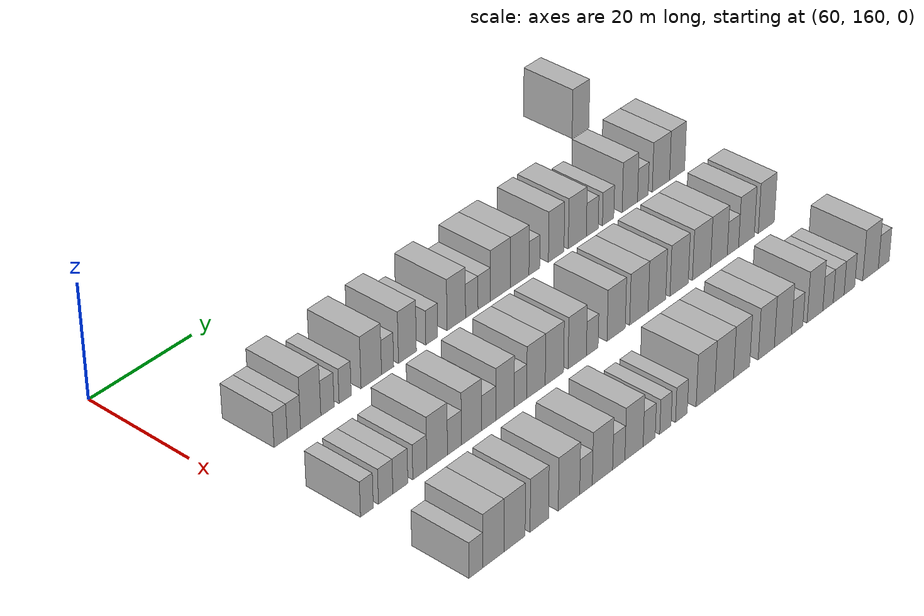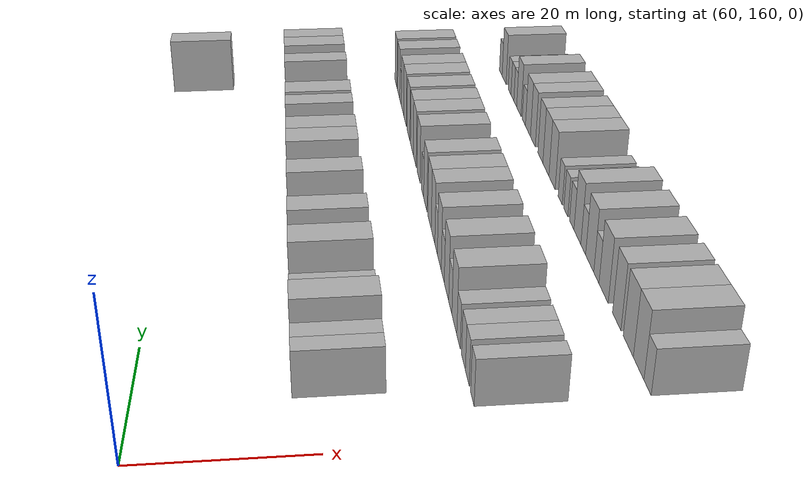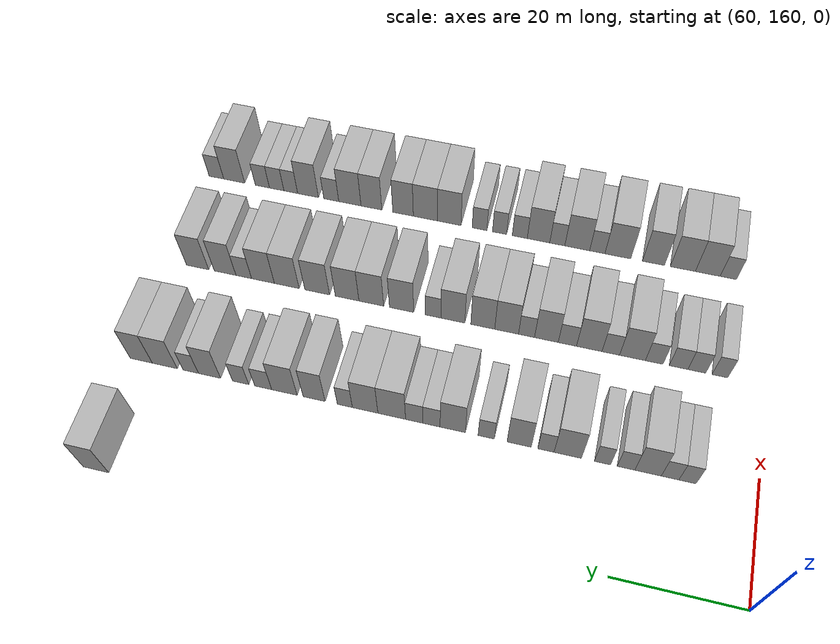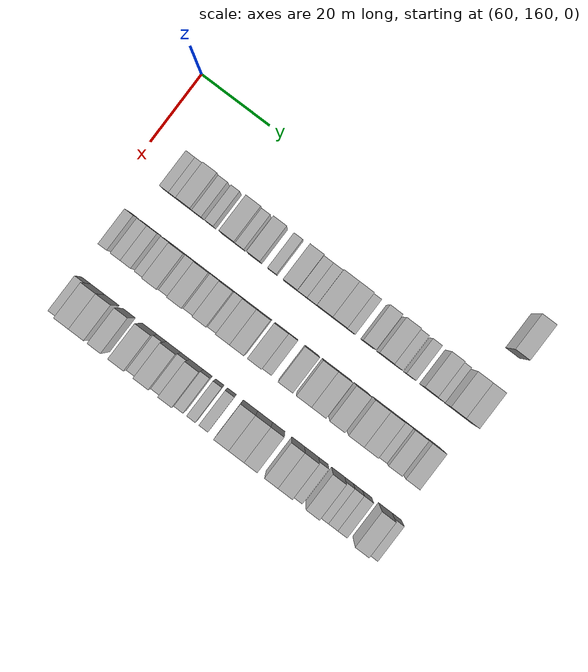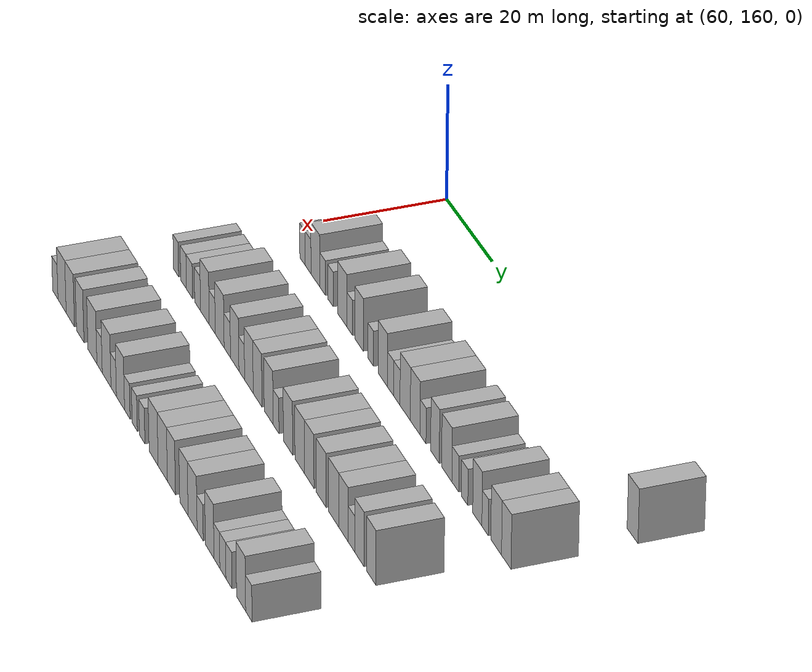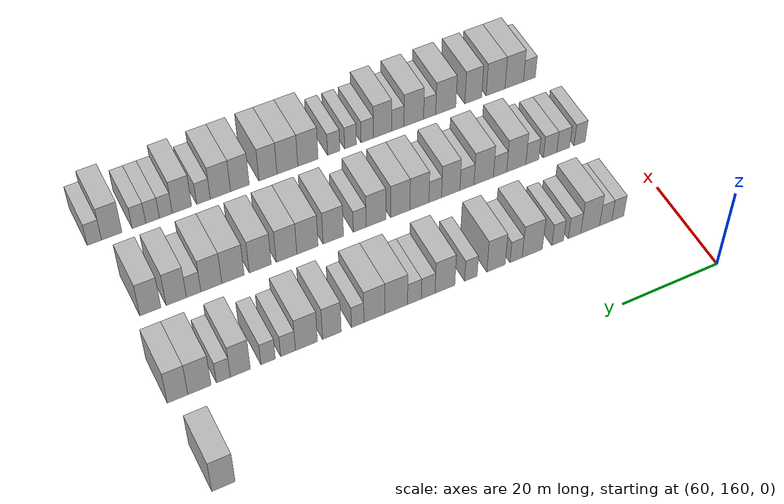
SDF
<sdf version="1.6">
 <world name="default">
  <model name="building_517">
   <static>1</static>
   <pose>63.0000 257.6993 0 0.000000 0.000000 0.000000</pose>
   <link name="link">
    <pose>0 0 4.50 0 0 0</pose>
    <collision name="collision"><geometry><box><size>10.0000 4.1460 9.0000</size></box></geometry></collision>
    <visual name="visual">
     <cast_shadows>0</cast_shadows>
     <geometry><box><size>10.0000 4.1460 9.0000</size></box></geometry>
     <material>
      <script>
       <uri>model://HANNAS_wall/materials/scripts</uri>
       <uri>model://HANNAS_wall/materials/textures</uri>
       <name>vrc/HANNAS_wall</name>
      </script>
     </material>
    </visual>
   </link>
  </model>
  <model name="building_678">
   <static>1</static>
   <pose>82.0000 170.5305 0 0.000000 0.000000 0.000000</pose>
   <link name="link">
    <pose>0 0 3.00 0 0 0</pose>
    <collision name="collision"><geometry><box><size>10.0000 2.5763 6.0000</size></box></geometry></collision>
    <visual name="visual">
     <cast_shadows>0</cast_shadows>
     <geometry><box><size>10.0000 2.5763 6.0000</size></box></geometry>
     <material>
      <script>
       <uri>model://HANNAS_wall/materials/scripts</uri>
       <uri>model://HANNAS_wall/materials/textures</uri>
       <name>vrc/HANNAS_wall</name>
      </script>
     </material>
    </visual>
   </link>
  </model>
  <model name="building_679">
   <static>1</static>
   <pose>82.0000 173.1396 0 0.000000 0.000000 0.000000</pose>
   <link name="link">
    <pose>0 0 3.00 0 0 0</pose>
    <collision name="collision"><geometry><box><size>10.0000 2.6419 6.0000</size></box></geometry></collision>
    <visual name="visual">
     <cast_shadows>0</cast_shadows>
     <geometry><box><size>10.0000 2.6419 6.0000</size></box></geometry>
     <material>
      <script>
       <uri>model://HANNAS_wall/materials/scripts</uri>
       <uri>model://HANNAS_wall/materials/textures</uri>
       <name>vrc/HANNAS_wall</name>
      </script>
     </material>
    </visual>
   </link>
  </model>
  <model name="building_680">
   <static>1</static>
   <pose>82.0000 176.4727 0 0.000000 0.000000 0.000000</pose>
   <link name="link">
    <pose>0 0 4.50 0 0 0</pose>
    <collision name="collision"><geometry><box><size>10.0000 4.0244 9.0000</size></box></geometry></collision>
    <visual name="visual">
     <cast_shadows>0</cast_shadows>
     <geometry><box><size>10.0000 4.0244 9.0000</size></box></geometry>
     <material>
      <script>
       <uri>model://HANNAS_wall/materials/scripts</uri>
       <uri>model://HANNAS_wall/materials/textures</uri>
       <name>vrc/HANNAS_wall</name>
      </script>
     </material>
    </visual>
   </link>
  </model>
  <model name="building_681">
   <static>1</static>
   <pose>82.0000 179.8192 0 0.000000 0.000000 0.000000</pose>
   <link name="link">
    <pose>0 0 3.00 0 0 0</pose>
    <collision name="collision"><geometry><box><size>10.0000 2.6686 6.0000</size></box></geometry></collision>
    <visual name="visual">
     <cast_shadows>0</cast_shadows>
     <geometry><box><size>10.0000 2.6686 6.0000</size></box></geometry>
     <material>
      <script>
       <uri>model://HANNAS_wall/materials/scripts</uri>
       <uri>model://HANNAS_wall/materials/textures</uri>
       <name>vrc/HANNAS_wall</name>
      </script>
     </material>
    </visual>
   </link>
  </model>
  <model name="building_682">
   <static>1</static>
   <pose>82.0000 183.3905 0 0.000000 0.000000 0.000000</pose>
   <link name="link">
    <pose>0 0 3.00 0 0 0</pose>
    <collision name="collision"><geometry><box><size>10.0000 2.4741 6.0000</size></box></geometry></collision>
    <visual name="visual">
     <cast_shadows>0</cast_shadows>
     <geometry><box><size>10.0000 2.4741 6.0000</size></box></geometry>
     <material>
      <script>
       <uri>model://HANNAS_wall/materials/scripts</uri>
       <uri>model://HANNAS_wall/materials/textures</uri>
       <name>vrc/HANNAS_wall</name>
      </script>
     </material>
    </visual>
   </link>
  </model>
  <model name="building_683">
   <static>1</static>
   <pose>82.0000 188.7425 0 0.000000 0.000000 0.000000</pose>
   <link name="link">
    <pose>0 0 4.50 0 0 0</pose>
    <collision name="collision"><geometry><box><size>10.0000 4.2299 9.0000</size></box></geometry></collision>
    <visual name="visual">
     <cast_shadows>0</cast_shadows>
     <geometry><box><size>10.0000 4.2299 9.0000</size></box></geometry>
     <material>
      <script>
       <uri>model://HANNAS_wall/materials/scripts</uri>
       <uri>model://HANNAS_wall/materials/textures</uri>
       <name>vrc/HANNAS_wall</name>
      </script>
     </material>
    </visual>
   </link>
  </model>
  <model name="building_684">
   <static>1</static>
   <pose>82.0000 192.1236 0 0.000000 0.000000 0.000000</pose>
   <link name="link">
    <pose>0 0 3.00 0 0 0</pose>
    <collision name="collision"><geometry><box><size>10.0000 2.5322 6.0000</size></box></geometry></collision>
    <visual name="visual">
     <cast_shadows>0</cast_shadows>
     <geometry><box><size>10.0000 2.5322 6.0000</size></box></geometry>
     <material>
      <script>
       <uri>model://HANNAS_wall/materials/scripts</uri>
       <uri>model://HANNAS_wall/materials/textures</uri>
       <name>vrc/HANNAS_wall</name>
      </script>
     </material>
    </visual>
   </link>
  </model>
  <model name="building_685">
   <static>1</static>
   <pose>82.0000 196.2786 0 0.000000 0.000000 0.000000</pose>
   <link name="link">
    <pose>0 0 4.50 0 0 0</pose>
    <collision name="collision"><geometry><box><size>10.0000 3.7779 9.0000</size></box></geometry></collision>
    <visual name="visual">
     <cast_shadows>0</cast_shadows>
     <geometry><box><size>10.0000 3.7779 9.0000</size></box></geometry>
     <material>
      <script>
       <uri>model://HANNAS_wall/materials/scripts</uri>
       <uri>model://HANNAS_wall/materials/textures</uri>
       <name>vrc/HANNAS_wall</name>
      </script>
     </material>
    </visual>
   </link>
  </model>
  <model name="building_686">
   <static>1</static>
   <pose>82.0000 201.4415 0 0.000000 0.000000 0.000000</pose>
   <link name="link">
    <pose>0 0 3.00 0 0 0</pose>
    <collision name="collision"><geometry><box><size>10.0000 2.5478 6.0000</size></box></geometry></collision>
    <visual name="visual">
     <cast_shadows>0</cast_shadows>
     <geometry><box><size>10.0000 2.5478 6.0000</size></box></geometry>
     <material>
      <script>
       <uri>model://HANNAS_wall/materials/scripts</uri>
       <uri>model://HANNAS_wall/materials/textures</uri>
       <name>vrc/HANNAS_wall</name>
      </script>
     </material>
    </visual>
   </link>
  </model>
  <model name="building_687">
   <static>1</static>
   <pose>82.0000 206.7251 0 0.000000 0.000000 0.000000</pose>
   <link name="link">
    <pose>0 0 4.50 0 0 0</pose>
    <collision name="collision"><geometry><box><size>10.0000 4.0194 9.0000</size></box></geometry></collision>
    <visual name="visual">
     <cast_shadows>0</cast_shadows>
     <geometry><box><size>10.0000 4.0194 9.0000</size></box></geometry>
     <material>
      <script>
       <uri>model://HANNAS_wall/materials/scripts</uri>
       <uri>model://HANNAS_wall/materials/textures</uri>
       <name>vrc/HANNAS_wall</name>
      </script>
     </material>
    </visual>
   </link>
  </model>
  <model name="building_688">
   <static>1</static>
   <pose>82.0000 210.1038 0 0.000000 0.000000 0.000000</pose>
   <link name="link">
    <pose>0 0 3.00 0 0 0</pose>
    <collision name="collision"><geometry><box><size>10.0000 2.7380 6.0000</size></box></geometry></collision>
    <visual name="visual">
     <cast_shadows>0</cast_shadows>
     <geometry><box><size>10.0000 2.7380 6.0000</size></box></geometry>
     <material>
      <script>
       <uri>model://HANNAS_wall/materials/scripts</uri>
       <uri>model://HANNAS_wall/materials/textures</uri>
       <name>vrc/HANNAS_wall</name>
      </script>
     </material>
    </visual>
   </link>
  </model>
  <model name="building_689">
   <static>1</static>
   <pose>82.0000 212.8608 0 0.000000 0.000000 0.000000</pose>
   <link name="link">
    <pose>0 0 3.00 0 0 0</pose>
    <collision name="collision"><geometry><box><size>10.0000 2.7760 6.0000</size></box></geometry></collision>
    <visual name="visual">
     <cast_shadows>0</cast_shadows>
     <geometry><box><size>10.0000 2.7760 6.0000</size></box></geometry>
     <material>
      <script>
       <uri>model://HANNAS_wall/materials/scripts</uri>
       <uri>model://HANNAS_wall/materials/textures</uri>
       <name>vrc/HANNAS_wall</name>
      </script>
     </material>
    </visual>
   </link>
  </model>
  <model name="building_690">
   <static>1</static>
   <pose>82.0000 216.4786 0 0.000000 0.000000 0.000000</pose>
   <link name="link">
    <pose>0 0 4.50 0 0 0</pose>
    <collision name="collision"><geometry><box><size>10.0000 4.4596 9.0000</size></box></geometry></collision>
    <visual name="visual">
     <cast_shadows>0</cast_shadows>
     <geometry><box><size>10.0000 4.4596 9.0000</size></box></geometry>
     <material>
      <script>
       <uri>model://HANNAS_wall/materials/scripts</uri>
       <uri>model://HANNAS_wall/materials/textures</uri>
       <name>vrc/HANNAS_wall</name>
      </script>
     </material>
    </visual>
   </link>
  </model>
  <model name="building_691">
   <static>1</static>
   <pose>82.0000 220.7791 0 0.000000 0.000000 0.000000</pose>
   <link name="link">
    <pose>0 0 4.50 0 0 0</pose>
    <collision name="collision"><geometry><box><size>10.0000 4.1415 9.0000</size></box></geometry></collision>
    <visual name="visual">
     <cast_shadows>0</cast_shadows>
     <geometry><box><size>10.0000 4.1415 9.0000</size></box></geometry>
     <material>
      <script>
       <uri>model://HANNAS_wall/materials/scripts</uri>
       <uri>model://HANNAS_wall/materials/textures</uri>
       <name>vrc/HANNAS_wall</name>
      </script>
     </material>
    </visual>
   </link>
  </model>
  <model name="building_692">
   <static>1</static>
   <pose>82.0000 224.0726 0 0.000000 0.000000 0.000000</pose>
   <link name="link">
    <pose>0 0 3.00 0 0 0</pose>
    <collision name="collision"><geometry><box><size>10.0000 2.4454 6.0000</size></box></geometry></collision>
    <visual name="visual">
     <cast_shadows>0</cast_shadows>
     <geometry><box><size>10.0000 2.4454 6.0000</size></box></geometry>
     <material>
      <script>
       <uri>model://HANNAS_wall/materials/scripts</uri>
       <uri>model://HANNAS_wall/materials/textures</uri>
       <name>vrc/HANNAS_wall</name>
      </script>
     </material>
    </visual>
   </link>
  </model>
  <model name="building_693">
   <static>1</static>
   <pose>82.0000 229.0969 0 0.000000 0.000000 0.000000</pose>
   <link name="link">
    <pose>0 0 4.50 0 0 0</pose>
    <collision name="collision"><geometry><box><size>10.0000 3.6032 9.0000</size></box></geometry></collision>
    <visual name="visual">
     <cast_shadows>0</cast_shadows>
     <geometry><box><size>10.0000 3.6032 9.0000</size></box></geometry>
     <material>
      <script>
       <uri>model://HANNAS_wall/materials/scripts</uri>
       <uri>model://HANNAS_wall/materials/textures</uri>
       <name>vrc/HANNAS_wall</name>
      </script>
     </material>
    </visual>
   </link>
  </model>
  <model name="building_694">
   <static>1</static>
   <pose>82.0000 234.0019 0 0.000000 0.000000 0.000000</pose>
   <link name="link">
    <pose>0 0 4.50 0 0 0</pose>
    <collision name="collision"><geometry><box><size>10.0000 4.2069 9.0000</size></box></geometry></collision>
    <visual name="visual">
     <cast_shadows>0</cast_shadows>
     <geometry><box><size>10.0000 4.2069 9.0000</size></box></geometry>
     <material>
      <script>
       <uri>model://HANNAS_wall/materials/scripts</uri>
       <uri>model://HANNAS_wall/materials/textures</uri>
       <name>vrc/HANNAS_wall</name>
      </script>
     </material>
    </visual>
   </link>
  </model>
  <model name="building_695">
   <static>1</static>
   <pose>82.0000 237.5170 0 0.000000 0.000000 0.000000</pose>
   <link name="link">
    <pose>0 0 3.00 0 0 0</pose>
    <collision name="collision"><geometry><box><size>10.0000 2.8233 6.0000</size></box></geometry></collision>
    <visual name="visual">
     <cast_shadows>0</cast_shadows>
     <geometry><box><size>10.0000 2.8233 6.0000</size></box></geometry>
     <material>
      <script>
       <uri>model://HANNAS_wall/materials/scripts</uri>
       <uri>model://HANNAS_wall/materials/textures</uri>
       <name>vrc/HANNAS_wall</name>
      </script>
     </material>
    </visual>
   </link>
  </model>
  <model name="building_696">
   <static>1</static>
   <pose>82.0000 241.2881 0 0.000000 0.000000 0.000000</pose>
   <link name="link">
    <pose>0 0 3.00 0 0 0</pose>
    <collision name="collision"><geometry><box><size>10.0000 2.7190 6.0000</size></box></geometry></collision>
    <visual name="visual">
     <cast_shadows>0</cast_shadows>
     <geometry><box><size>10.0000 2.7190 6.0000</size></box></geometry>
     <material>
      <script>
       <uri>model://HANNAS_wall/materials/scripts</uri>
       <uri>model://HANNAS_wall/materials/textures</uri>
       <name>vrc/HANNAS_wall</name>
      </script>
     </material>
    </visual>
   </link>
  </model>
  <model name="building_697">
   <static>1</static>
   <pose>82.0000 246.5117 0 0.000000 0.000000 0.000000</pose>
   <link name="link">
    <pose>0 0 4.50 0 0 0</pose>
    <collision name="collision"><geometry><box><size>10.0000 3.7283 9.0000</size></box></geometry></collision>
    <visual name="visual">
     <cast_shadows>0</cast_shadows>
     <geometry><box><size>10.0000 3.7283 9.0000</size></box></geometry>
     <material>
      <script>
       <uri>model://HANNAS_wall/materials/scripts</uri>
       <uri>model://HANNAS_wall/materials/textures</uri>
       <name>vrc/HANNAS_wall</name>
      </script>
     </material>
    </visual>
   </link>
  </model>
  <model name="building_698">
   <static>1</static>
   <pose>82.0000 249.6738 0 0.000000 0.000000 0.000000</pose>
   <link name="link">
    <pose>0 0 3.00 0 0 0</pose>
    <collision name="collision"><geometry><box><size>10.0000 2.5958 6.0000</size></box></geometry></collision>
    <visual name="visual">
     <cast_shadows>0</cast_shadows>
     <geometry><box><size>10.0000 2.5958 6.0000</size></box></geometry>
     <material>
      <script>
       <uri>model://HANNAS_wall/materials/scripts</uri>
       <uri>model://HANNAS_wall/materials/textures</uri>
       <name>vrc/HANNAS_wall</name>
      </script>
     </material>
    </visual>
   </link>
  </model>
  <model name="building_699">
   <static>1</static>
   <pose>82.0000 254.1064 0 0.000000 0.000000 0.000000</pose>
   <link name="link">
    <pose>0 0 4.50 0 0 0</pose>
    <collision name="collision"><geometry><box><size>10.0000 4.2693 9.0000</size></box></geometry></collision>
    <visual name="visual">
     <cast_shadows>0</cast_shadows>
     <geometry><box><size>10.0000 4.2693 9.0000</size></box></geometry>
     <material>
      <script>
       <uri>model://HANNAS_wall/materials/scripts</uri>
       <uri>model://HANNAS_wall/materials/textures</uri>
       <name>vrc/HANNAS_wall</name>
      </script>
     </material>
    </visual>
   </link>
  </model>
  <model name="building_700">
   <static>1</static>
   <pose>82.0000 258.1278 0 0.000000 0.000000 0.000000</pose>
   <link name="link">
    <pose>0 0 4.50 0 0 0</pose>
    <collision name="collision"><geometry><box><size>10.0000 3.7735 9.0000</size></box></geometry></collision>
    <visual name="visual">
     <cast_shadows>0</cast_shadows>
     <geometry><box><size>10.0000 3.7735 9.0000</size></box></geometry>
     <material>
      <script>
       <uri>model://HANNAS_wall/materials/scripts</uri>
       <uri>model://HANNAS_wall/materials/textures</uri>
       <name>vrc/HANNAS_wall</name>
      </script>
     </material>
    </visual>
   </link>
  </model>
  <model name="building_844">
   <static>1</static>
   <pose>101.0000 167.3935 0 0.000000 0.000000 0.000000</pose>
   <link name="link">
    <pose>0 0 3.00 0 0 0</pose>
    <collision name="collision"><geometry><box><size>10.0000 2.4996 6.0000</size></box></geometry></collision>
    <visual name="visual">
     <cast_shadows>0</cast_shadows>
     <geometry><box><size>10.0000 2.4996 6.0000</size></box></geometry>
     <material>
      <script>
       <uri>model://HANNAS_wall/materials/scripts</uri>
       <uri>model://HANNAS_wall/materials/textures</uri>
       <name>vrc/HANNAS_wall</name>
      </script>
     </material>
    </visual>
   </link>
  </model>
  <model name="building_845">
   <static>1</static>
   <pose>101.0000 171.0635 0 0.000000 0.000000 0.000000</pose>
   <link name="link">
    <pose>0 0 3.00 0 0 0</pose>
    <collision name="collision"><geometry><box><size>10.0000 2.8404 6.0000</size></box></geometry></collision>
    <visual name="visual">
     <cast_shadows>0</cast_shadows>
     <geometry><box><size>10.0000 2.8404 6.0000</size></box></geometry>
     <material>
      <script>
       <uri>model://HANNAS_wall/materials/scripts</uri>
       <uri>model://HANNAS_wall/materials/textures</uri>
       <name>vrc/HANNAS_wall</name>
      </script>
     </material>
    </visual>
   </link>
  </model>
  <model name="building_846">
   <static>1</static>
   <pose>101.0000 173.9711 0 0.000000 0.000000 0.000000</pose>
   <link name="link">
    <pose>0 0 3.00 0 0 0</pose>
    <collision name="collision"><geometry><box><size>10.0000 2.9747 6.0000</size></box></geometry></collision>
    <visual name="visual">
     <cast_shadows>0</cast_shadows>
     <geometry><box><size>10.0000 2.9747 6.0000</size></box></geometry>
     <material>
      <script>
       <uri>model://HANNAS_wall/materials/scripts</uri>
       <uri>model://HANNAS_wall/materials/textures</uri>
       <name>vrc/HANNAS_wall</name>
      </script>
     </material>
    </visual>
   </link>
  </model>
  <model name="building_847">
   <static>1</static>
   <pose>101.0000 177.8793 0 0.000000 0.000000 0.000000</pose>
   <link name="link">
    <pose>0 0 3.00 0 0 0</pose>
    <collision name="collision"><geometry><box><size>10.0000 2.8416 6.0000</size></box></geometry></collision>
    <visual name="visual">
     <cast_shadows>0</cast_shadows>
     <geometry><box><size>10.0000 2.8416 6.0000</size></box></geometry>
     <material>
      <script>
       <uri>model://HANNAS_wall/materials/scripts</uri>
       <uri>model://HANNAS_wall/materials/textures</uri>
       <name>vrc/HANNAS_wall</name>
      </script>
     </material>
    </visual>
   </link>
  </model>
  <model name="building_848">
   <static>1</static>
   <pose>101.0000 181.3865 0 0.000000 0.000000 0.000000</pose>
   <link name="link">
    <pose>0 0 4.50 0 0 0</pose>
    <collision name="collision"><geometry><box><size>10.0000 4.1728 9.0000</size></box></geometry></collision>
    <visual name="visual">
     <cast_shadows>0</cast_shadows>
     <geometry><box><size>10.0000 4.1728 9.0000</size></box></geometry>
     <material>
      <script>
       <uri>model://HANNAS_wall/materials/scripts</uri>
       <uri>model://HANNAS_wall/materials/textures</uri>
       <name>vrc/HANNAS_wall</name>
      </script>
     </material>
    </visual>
   </link>
  </model>
  <model name="building_849">
   <static>1</static>
   <pose>101.0000 184.9068 0 0.000000 0.000000 0.000000</pose>
   <link name="link">
    <pose>0 0 3.00 0 0 0</pose>
    <collision name="collision"><geometry><box><size>10.0000 2.8678 6.0000</size></box></geometry></collision>
    <visual name="visual">
     <cast_shadows>0</cast_shadows>
     <geometry><box><size>10.0000 2.8678 6.0000</size></box></geometry>
     <material>
      <script>
       <uri>model://HANNAS_wall/materials/scripts</uri>
       <uri>model://HANNAS_wall/materials/textures</uri>
       <name>vrc/HANNAS_wall</name>
      </script>
     </material>
    </visual>
   </link>
  </model>
  <model name="building_850">
   <static>1</static>
   <pose>101.0000 188.4299 0 0.000000 0.000000 0.000000</pose>
   <link name="link">
    <pose>0 0 4.50 0 0 0</pose>
    <collision name="collision"><geometry><box><size>10.0000 4.1785 9.0000</size></box></geometry></collision>
    <visual name="visual">
     <cast_shadows>0</cast_shadows>
     <geometry><box><size>10.0000 4.1785 9.0000</size></box></geometry>
     <material>
      <script>
       <uri>model://HANNAS_wall/materials/scripts</uri>
       <uri>model://HANNAS_wall/materials/textures</uri>
       <name>vrc/HANNAS_wall</name>
      </script>
     </material>
    </visual>
   </link>
  </model>
  <model name="building_851">
   <static>1</static>
   <pose>101.0000 192.0177 0 0.000000 0.000000 0.000000</pose>
   <link name="link">
    <pose>0 0 3.00 0 0 0</pose>
    <collision name="collision"><geometry><box><size>10.0000 2.9970 6.0000</size></box></geometry></collision>
    <visual name="visual">
     <cast_shadows>0</cast_shadows>
     <geometry><box><size>10.0000 2.9970 6.0000</size></box></geometry>
     <material>
      <script>
       <uri>model://HANNAS_wall/materials/scripts</uri>
       <uri>model://HANNAS_wall/materials/textures</uri>
       <name>vrc/HANNAS_wall</name>
      </script>
     </material>
    </visual>
   </link>
  </model>
  <model name="building_852">
   <static>1</static>
   <pose>101.0000 195.4708 0 0.000000 0.000000 0.000000</pose>
   <link name="link">
    <pose>0 0 4.50 0 0 0</pose>
    <collision name="collision"><geometry><box><size>10.0000 3.9091 9.0000</size></box></geometry></collision>
    <visual name="visual">
     <cast_shadows>0</cast_shadows>
     <geometry><box><size>10.0000 3.9091 9.0000</size></box></geometry>
     <material>
      <script>
       <uri>model://HANNAS_wall/materials/scripts</uri>
       <uri>model://HANNAS_wall/materials/textures</uri>
       <name>vrc/HANNAS_wall</name>
      </script>
     </material>
    </visual>
   </link>
  </model>
  <model name="building_853">
   <static>1</static>
   <pose>101.0000 198.7558 0 0.000000 0.000000 0.000000</pose>
   <link name="link">
    <pose>0 0 3.00 0 0 0</pose>
    <collision name="collision"><geometry><box><size>10.0000 2.6610 6.0000</size></box></geometry></collision>
    <visual name="visual">
     <cast_shadows>0</cast_shadows>
     <geometry><box><size>10.0000 2.6610 6.0000</size></box></geometry>
     <material>
      <script>
       <uri>model://HANNAS_wall/materials/scripts</uri>
       <uri>model://HANNAS_wall/materials/textures</uri>
       <name>vrc/HANNAS_wall</name>
      </script>
     </material>
    </visual>
   </link>
  </model>
  <model name="building_854">
   <static>1</static>
   <pose>101.0000 202.0729 0 0.000000 0.000000 0.000000</pose>
   <link name="link">
    <pose>0 0 4.50 0 0 0</pose>
    <collision name="collision"><geometry><box><size>10.0000 3.9731 9.0000</size></box></geometry></collision>
    <visual name="visual">
     <cast_shadows>0</cast_shadows>
     <geometry><box><size>10.0000 3.9731 9.0000</size></box></geometry>
     <material>
      <script>
       <uri>model://HANNAS_wall/materials/scripts</uri>
       <uri>model://HANNAS_wall/materials/textures</uri>
       <name>vrc/HANNAS_wall</name>
      </script>
     </material>
    </visual>
   </link>
  </model>
  <model name="building_855">
   <static>1</static>
   <pose>101.0000 206.0640 0 0.000000 0.000000 0.000000</pose>
   <link name="link">
    <pose>0 0 4.50 0 0 0</pose>
    <collision name="collision"><geometry><box><size>10.0000 4.0092 9.0000</size></box></geometry></collision>
    <visual name="visual">
     <cast_shadows>0</cast_shadows>
     <geometry><box><size>10.0000 4.0092 9.0000</size></box></geometry>
     <material>
      <script>
       <uri>model://HANNAS_wall/materials/scripts</uri>
       <uri>model://HANNAS_wall/materials/textures</uri>
       <name>vrc/HANNAS_wall</name>
      </script>
     </material>
    </visual>
   </link>
  </model>
  <model name="building_856">
   <static>1</static>
   <pose>101.0000 211.0908 0 0.000000 0.000000 0.000000</pose>
   <link name="link">
    <pose>0 0 4.50 0 0 0</pose>
    <collision name="collision"><geometry><box><size>10.0000 4.0444 9.0000</size></box></geometry></collision>
    <visual name="visual">
     <cast_shadows>0</cast_shadows>
     <geometry><box><size>10.0000 4.0444 9.0000</size></box></geometry>
     <material>
      <script>
       <uri>model://HANNAS_wall/materials/scripts</uri>
       <uri>model://HANNAS_wall/materials/textures</uri>
       <name>vrc/HANNAS_wall</name>
      </script>
     </material>
    </visual>
   </link>
  </model>
  <model name="building_857">
   <static>1</static>
   <pose>101.0000 214.4286 0 0.000000 0.000000 0.000000</pose>
   <link name="link">
    <pose>0 0 3.00 0 0 0</pose>
    <collision name="collision"><geometry><box><size>10.0000 2.6313 6.0000</size></box></geometry></collision>
    <visual name="visual">
     <cast_shadows>0</cast_shadows>
     <geometry><box><size>10.0000 2.6313 6.0000</size></box></geometry>
     <material>
      <script>
       <uri>model://HANNAS_wall/materials/scripts</uri>
       <uri>model://HANNAS_wall/materials/textures</uri>
       <name>vrc/HANNAS_wall</name>
      </script>
     </material>
    </visual>
   </link>
  </model>
  <model name="building_858">
   <static>1</static>
   <pose>101.0000 219.8156 0 0.000000 0.000000 0.000000</pose>
   <link name="link">
    <pose>0 0 4.50 0 0 0</pose>
    <collision name="collision"><geometry><box><size>10.0000 4.1427 9.0000</size></box></geometry></collision>
    <visual name="visual">
     <cast_shadows>0</cast_shadows>
     <geometry><box><size>10.0000 4.1427 9.0000</size></box></geometry>
     <material>
      <script>
       <uri>model://HANNAS_wall/materials/scripts</uri>
       <uri>model://HANNAS_wall/materials/textures</uri>
       <name>vrc/HANNAS_wall</name>
      </script>
     </material>
    </visual>
   </link>
  </model>
  <model name="building_859">
   <static>1</static>
   <pose>101.0000 225.0222 0 0.000000 0.000000 0.000000</pose>
   <link name="link">
    <pose>0 0 4.50 0 0 0</pose>
    <collision name="collision"><geometry><box><size>10.0000 4.2705 9.0000</size></box></geometry></collision>
    <visual name="visual">
     <cast_shadows>0</cast_shadows>
     <geometry><box><size>10.0000 4.2705 9.0000</size></box></geometry>
     <material>
      <script>
       <uri>model://HANNAS_wall/materials/scripts</uri>
       <uri>model://HANNAS_wall/materials/textures</uri>
       <name>vrc/HANNAS_wall</name>
      </script>
     </material>
    </visual>
   </link>
  </model>
  <model name="building_860">
   <static>1</static>
   <pose>101.0000 229.2096 0 0.000000 0.000000 0.000000</pose>
   <link name="link">
    <pose>0 0 4.50 0 0 0</pose>
    <collision name="collision"><geometry><box><size>10.0000 4.1041 9.0000</size></box></geometry></collision>
    <visual name="visual">
     <cast_shadows>0</cast_shadows>
     <geometry><box><size>10.0000 4.1041 9.0000</size></box></geometry>
     <material>
      <script>
       <uri>model://HANNAS_wall/materials/scripts</uri>
       <uri>model://HANNAS_wall/materials/textures</uri>
       <name>vrc/HANNAS_wall</name>
      </script>
     </material>
    </visual>
   </link>
  </model>
  <model name="building_861">
   <static>1</static>
   <pose>101.0000 234.4239 0 0.000000 0.000000 0.000000</pose>
   <link name="link">
    <pose>0 0 4.50 0 0 0</pose>
    <collision name="collision"><geometry><box><size>10.0000 4.3246 9.0000</size></box></geometry></collision>
    <visual name="visual">
     <cast_shadows>0</cast_shadows>
     <geometry><box><size>10.0000 4.3246 9.0000</size></box></geometry>
     <material>
      <script>
       <uri>model://HANNAS_wall/materials/scripts</uri>
       <uri>model://HANNAS_wall/materials/textures</uri>
       <name>vrc/HANNAS_wall</name>
      </script>
     </material>
    </visual>
   </link>
  </model>
  <model name="building_862">
   <static>1</static>
   <pose>101.0000 239.7666 0 0.000000 0.000000 0.000000</pose>
   <link name="link">
    <pose>0 0 4.50 0 0 0</pose>
    <collision name="collision"><geometry><box><size>10.0000 4.3606 9.0000</size></box></geometry></collision>
    <visual name="visual">
     <cast_shadows>0</cast_shadows>
     <geometry><box><size>10.0000 4.3606 9.0000</size></box></geometry>
     <material>
      <script>
       <uri>model://HANNAS_wall/materials/scripts</uri>
       <uri>model://HANNAS_wall/materials/textures</uri>
       <name>vrc/HANNAS_wall</name>
      </script>
     </material>
    </visual>
   </link>
  </model>
  <model name="building_863">
   <static>1</static>
   <pose>101.0000 243.9707 0 0.000000 0.000000 0.000000</pose>
   <link name="link">
    <pose>0 0 4.50 0 0 0</pose>
    <collision name="collision"><geometry><box><size>10.0000 4.0477 9.0000</size></box></geometry></collision>
    <visual name="visual">
     <cast_shadows>0</cast_shadows>
     <geometry><box><size>10.0000 4.0477 9.0000</size></box></geometry>
     <material>
      <script>
       <uri>model://HANNAS_wall/materials/scripts</uri>
       <uri>model://HANNAS_wall/materials/textures</uri>
       <name>vrc/HANNAS_wall</name>
      </script>
     </material>
    </visual>
   </link>
  </model>
  <model name="building_864">
   <static>1</static>
   <pose>101.0000 247.3897 0 0.000000 0.000000 0.000000</pose>
   <link name="link">
    <pose>0 0 3.00 0 0 0</pose>
    <collision name="collision"><geometry><box><size>10.0000 2.7904 6.0000</size></box></geometry></collision>
    <visual name="visual">
     <cast_shadows>0</cast_shadows>
     <geometry><box><size>10.0000 2.7904 6.0000</size></box></geometry>
     <material>
      <script>
       <uri>model://HANNAS_wall/materials/scripts</uri>
       <uri>model://HANNAS_wall/materials/textures</uri>
       <name>vrc/HANNAS_wall</name>
      </script>
     </material>
    </visual>
   </link>
  </model>
  <model name="building_865">
   <static>1</static>
   <pose>101.0000 250.7246 0 0.000000 0.000000 0.000000</pose>
   <link name="link">
    <pose>0 0 4.50 0 0 0</pose>
    <collision name="collision"><geometry><box><size>10.0000 3.8793 9.0000</size></box></geometry></collision>
    <visual name="visual">
     <cast_shadows>0</cast_shadows>
     <geometry><box><size>10.0000 3.8793 9.0000</size></box></geometry>
     <material>
      <script>
       <uri>model://HANNAS_wall/materials/scripts</uri>
       <uri>model://HANNAS_wall/materials/textures</uri>
       <name>vrc/HANNAS_wall</name>
      </script>
     </material>
    </visual>
   </link>
  </model>
  <model name="building_866">
   <static>1</static>
   <pose>101.0000 255.6641 0 0.000000 0.000000 0.000000</pose>
   <link name="link">
    <pose>0 0 4.50 0 0 0</pose>
    <collision name="collision"><geometry><box><size>10.0000 3.9997 9.0000</size></box></geometry></collision>
    <visual name="visual">
     <cast_shadows>0</cast_shadows>
     <geometry><box><size>10.0000 3.9997 9.0000</size></box></geometry>
     <material>
      <script>
       <uri>model://HANNAS_wall/materials/scripts</uri>
       <uri>model://HANNAS_wall/materials/textures</uri>
       <name>vrc/HANNAS_wall</name>
      </script>
     </material>
    </visual>
   </link>
  </model>
  <model name="building_1023">
   <static>1</static>
   <pose>120.0000 167.6698 0 0.000000 0.000000 0.000000</pose>
   <link name="link">
    <pose>0 0 3.00 0 0 0</pose>
    <collision name="collision"><geometry><box><size>10.0000 2.7257 6.0000</size></box></geometry></collision>
    <visual name="visual">
     <cast_shadows>0</cast_shadows>
     <geometry><box><size>10.0000 2.7257 6.0000</size></box></geometry>
     <material>
      <script>
       <uri>model://HANNAS_wall/materials/scripts</uri>
       <uri>model://HANNAS_wall/materials/textures</uri>
       <name>vrc/HANNAS_wall</name>
      </script>
     </material>
    </visual>
   </link>
  </model>
  <model name="building_1024">
   <static>1</static>
   <pose>120.0000 171.1295 0 0.000000 0.000000 0.000000</pose>
   <link name="link">
    <pose>0 0 4.50 0 0 0</pose>
    <collision name="collision"><geometry><box><size>10.0000 4.1936 9.0000</size></box></geometry></collision>
    <visual name="visual">
     <cast_shadows>0</cast_shadows>
     <geometry><box><size>10.0000 4.1936 9.0000</size></box></geometry>
     <material>
      <script>
       <uri>model://HANNAS_wall/materials/scripts</uri>
       <uri>model://HANNAS_wall/materials/textures</uri>
       <name>vrc/HANNAS_wall</name>
      </script>
     </material>
    </visual>
   </link>
  </model>
  <model name="building_1025">
   <static>1</static>
   <pose>120.0000 175.3466 0 0.000000 0.000000 0.000000</pose>
   <link name="link">
    <pose>0 0 4.50 0 0 0</pose>
    <collision name="collision"><geometry><box><size>10.0000 4.2407 9.0000</size></box></geometry></collision>
    <visual name="visual">
     <cast_shadows>0</cast_shadows>
     <geometry><box><size>10.0000 4.2407 9.0000</size></box></geometry>
     <material>
      <script>
       <uri>model://HANNAS_wall/materials/scripts</uri>
       <uri>model://HANNAS_wall/materials/textures</uri>
       <name>vrc/HANNAS_wall</name>
      </script>
     </material>
    </visual>
   </link>
  </model>
  <model name="building_1026">
   <static>1</static>
   <pose>120.0000 180.3546 0 0.000000 0.000000 0.000000</pose>
   <link name="link">
    <pose>0 0 4.50 0 0 0</pose>
    <collision name="collision"><geometry><box><size>10.0000 3.7755 9.0000</size></box></geometry></collision>
    <visual name="visual">
     <cast_shadows>0</cast_shadows>
     <geometry><box><size>10.0000 3.7755 9.0000</size></box></geometry>
     <material>
      <script>
       <uri>model://HANNAS_wall/materials/scripts</uri>
       <uri>model://HANNAS_wall/materials/textures</uri>
       <name>vrc/HANNAS_wall</name>
      </script>
     </material>
    </visual>
   </link>
  </model>
  <model name="building_1027">
   <static>1</static>
   <pose>120.0000 186.4709 0 0.000000 0.000000 0.000000</pose>
   <link name="link">
    <pose>0 0 4.50 0 0 0</pose>
    <collision name="collision"><geometry><box><size>10.0000 4.4570 9.0000</size></box></geometry></collision>
    <visual name="visual">
     <cast_shadows>0</cast_shadows>
     <geometry><box><size>10.0000 4.4570 9.0000</size></box></geometry>
     <material>
      <script>
       <uri>model://HANNAS_wall/materials/scripts</uri>
       <uri>model://HANNAS_wall/materials/textures</uri>
       <name>vrc/HANNAS_wall</name>
      </script>
     </material>
    </visual>
   </link>
  </model>
  <model name="building_1028">
   <static>1</static>
   <pose>120.0000 190.0249 0 0.000000 0.000000 0.000000</pose>
   <link name="link">
    <pose>0 0 3.00 0 0 0</pose>
    <collision name="collision"><geometry><box><size>10.0000 2.6510 6.0000</size></box></geometry></collision>
    <visual name="visual">
     <cast_shadows>0</cast_shadows>
     <geometry><box><size>10.0000 2.6510 6.0000</size></box></geometry>
     <material>
      <script>
       <uri>model://HANNAS_wall/materials/scripts</uri>
       <uri>model://HANNAS_wall/materials/textures</uri>
       <name>vrc/HANNAS_wall</name>
      </script>
     </material>
    </visual>
   </link>
  </model>
  <model name="building_1029">
   <static>1</static>
   <pose>120.0000 193.5069 0 0.000000 0.000000 0.000000</pose>
   <link name="link">
    <pose>0 0 4.50 0 0 0</pose>
    <collision name="collision"><geometry><box><size>10.0000 4.3129 9.0000</size></box></geometry></collision>
    <visual name="visual">
     <cast_shadows>0</cast_shadows>
     <geometry><box><size>10.0000 4.3129 9.0000</size></box></geometry>
     <material>
      <script>
       <uri>model://HANNAS_wall/materials/scripts</uri>
       <uri>model://HANNAS_wall/materials/textures</uri>
       <name>vrc/HANNAS_wall</name>
      </script>
     </material>
    </visual>
   </link>
  </model>
  <model name="building_1030">
   <static>1</static>
   <pose>120.0000 196.9809 0 0.000000 0.000000 0.000000</pose>
   <link name="link">
    <pose>0 0 3.00 0 0 0</pose>
    <collision name="collision"><geometry><box><size>10.0000 2.6352 6.0000</size></box></geometry></collision>
    <visual name="visual">
     <cast_shadows>0</cast_shadows>
     <geometry><box><size>10.0000 2.6352 6.0000</size></box></geometry>
     <material>
      <script>
       <uri>model://HANNAS_wall/materials/scripts</uri>
       <uri>model://HANNAS_wall/materials/textures</uri>
       <name>vrc/HANNAS_wall</name>
      </script>
     </material>
    </visual>
   </link>
  </model>
  <model name="building_1031">
   <static>1</static>
   <pose>120.0000 200.2764 0 0.000000 0.000000 0.000000</pose>
   <link name="link">
    <pose>0 0 4.50 0 0 0</pose>
    <collision name="collision"><geometry><box><size>10.0000 3.9557 9.0000</size></box></geometry></collision>
    <visual name="visual">
     <cast_shadows>0</cast_shadows>
     <geometry><box><size>10.0000 3.9557 9.0000</size></box></geometry>
     <material>
      <script>
       <uri>model://HANNAS_wall/materials/scripts</uri>
       <uri>model://HANNAS_wall/materials/textures</uri>
       <name>vrc/HANNAS_wall</name>
      </script>
     </material>
    </visual>
   </link>
  </model>
  <model name="building_1032">
   <static>1</static>
   <pose>120.0000 203.5775 0 0.000000 0.000000 0.000000</pose>
   <link name="link">
    <pose>0 0 3.00 0 0 0</pose>
    <collision name="collision"><geometry><box><size>10.0000 2.6466 6.0000</size></box></geometry></collision>
    <visual name="visual">
     <cast_shadows>0</cast_shadows>
     <geometry><box><size>10.0000 2.6466 6.0000</size></box></geometry>
     <material>
      <script>
       <uri>model://HANNAS_wall/materials/scripts</uri>
       <uri>model://HANNAS_wall/materials/textures</uri>
       <name>vrc/HANNAS_wall</name>
      </script>
     </material>
    </visual>
   </link>
  </model>
  <model name="building_1033">
   <static>1</static>
   <pose>120.0000 207.1527 0 0.000000 0.000000 0.000000</pose>
   <link name="link">
    <pose>0 0 3.00 0 0 0</pose>
    <collision name="collision"><geometry><box><size>10.0000 2.5039 6.0000</size></box></geometry></collision>
    <visual name="visual">
     <cast_shadows>0</cast_shadows>
     <geometry><box><size>10.0000 2.5039 6.0000</size></box></geometry>
     <material>
      <script>
       <uri>model://HANNAS_wall/materials/scripts</uri>
       <uri>model://HANNAS_wall/materials/textures</uri>
       <name>vrc/HANNAS_wall</name>
      </script>
     </material>
    </visual>
   </link>
  </model>
  <model name="building_1034">
   <static>1</static>
   <pose>120.0000 210.7140 0 0.000000 0.000000 0.000000</pose>
   <link name="link">
    <pose>0 0 3.00 0 0 0</pose>
    <collision name="collision"><geometry><box><size>10.0000 2.6186 6.0000</size></box></geometry></collision>
    <visual name="visual">
     <cast_shadows>0</cast_shadows>
     <geometry><box><size>10.0000 2.6186 6.0000</size></box></geometry>
     <material>
      <script>
       <uri>model://HANNAS_wall/materials/scripts</uri>
       <uri>model://HANNAS_wall/materials/textures</uri>
       <name>vrc/HANNAS_wall</name>
      </script>
     </material>
    </visual>
   </link>
  </model>
  <model name="building_1035">
   <static>1</static>
   <pose>120.0000 216.1473 0 0.000000 0.000000 0.000000</pose>
   <link name="link">
    <pose>0 0 4.50 0 0 0</pose>
    <collision name="collision"><geometry><box><size>10.0000 4.2481 9.0000</size></box></geometry></collision>
    <visual name="visual">
     <cast_shadows>0</cast_shadows>
     <geometry><box><size>10.0000 4.2481 9.0000</size></box></geometry>
     <material>
      <script>
       <uri>model://HANNAS_wall/materials/scripts</uri>
       <uri>model://HANNAS_wall/materials/textures</uri>
       <name>vrc/HANNAS_wall</name>
      </script>
     </material>
    </visual>
   </link>
  </model>
  <model name="building_1036">
   <static>1</static>
   <pose>120.0000 220.4395 0 0.000000 0.000000 0.000000</pose>
   <link name="link">
    <pose>0 0 4.50 0 0 0</pose>
    <collision name="collision"><geometry><box><size>10.0000 4.3362 9.0000</size></box></geometry></collision>
    <visual name="visual">
     <cast_shadows>0</cast_shadows>
     <geometry><box><size>10.0000 4.3362 9.0000</size></box></geometry>
     <material>
      <script>
       <uri>model://HANNAS_wall/materials/scripts</uri>
       <uri>model://HANNAS_wall/materials/textures</uri>
       <name>vrc/HANNAS_wall</name>
      </script>
     </material>
    </visual>
   </link>
  </model>
  <model name="building_1037">
   <static>1</static>
   <pose>120.0000 224.4720 0 0.000000 0.000000 0.000000</pose>
   <link name="link">
    <pose>0 0 4.50 0 0 0</pose>
    <collision name="collision"><geometry><box><size>10.0000 3.7289 9.0000</size></box></geometry></collision>
    <visual name="visual">
     <cast_shadows>0</cast_shadows>
     <geometry><box><size>10.0000 3.7289 9.0000</size></box></geometry>
     <material>
      <script>
       <uri>model://HANNAS_wall/materials/scripts</uri>
       <uri>model://HANNAS_wall/materials/textures</uri>
       <name>vrc/HANNAS_wall</name>
      </script>
     </material>
    </visual>
   </link>
  </model>
  <model name="building_1038">
   <static>1</static>
   <pose>120.0000 230.2434 0 0.000000 0.000000 0.000000</pose>
   <link name="link">
    <pose>0 0 4.50 0 0 0</pose>
    <collision name="collision"><geometry><box><size>10.0000 3.8139 9.0000</size></box></geometry></collision>
    <visual name="visual">
     <cast_shadows>0</cast_shadows>
     <geometry><box><size>10.0000 3.8139 9.0000</size></box></geometry>
     <material>
      <script>
       <uri>model://HANNAS_wall/materials/scripts</uri>
       <uri>model://HANNAS_wall/materials/textures</uri>
       <name>vrc/HANNAS_wall</name>
      </script>
     </material>
    </visual>
   </link>
  </model>
  <model name="building_1039">
   <static>1</static>
   <pose>120.0000 234.2032 0 0.000000 0.000000 0.000000</pose>
   <link name="link">
    <pose>0 0 4.50 0 0 0</pose>
    <collision name="collision"><geometry><box><size>10.0000 4.1057 9.0000</size></box></geometry></collision>
    <visual name="visual">
     <cast_shadows>0</cast_shadows>
     <geometry><box><size>10.0000 4.1057 9.0000</size></box></geometry>
     <material>
      <script>
       <uri>model://HANNAS_wall/materials/scripts</uri>
       <uri>model://HANNAS_wall/materials/textures</uri>
       <name>vrc/HANNAS_wall</name>
      </script>
     </material>
    </visual>
   </link>
  </model>
  <model name="building_1040">
   <static>1</static>
   <pose>120.0000 237.6365 0 0.000000 0.000000 0.000000</pose>
   <link name="link">
    <pose>0 0 3.00 0 0 0</pose>
    <collision name="collision"><geometry><box><size>10.0000 2.7609 6.0000</size></box></geometry></collision>
    <visual name="visual">
     <cast_shadows>0</cast_shadows>
     <geometry><box><size>10.0000 2.7609 6.0000</size></box></geometry>
     <material>
      <script>
       <uri>model://HANNAS_wall/materials/scripts</uri>
       <uri>model://HANNAS_wall/materials/textures</uri>
       <name>vrc/HANNAS_wall</name>
      </script>
     </material>
    </visual>
   </link>
  </model>
  <model name="building_1041">
   <static>1</static>
   <pose>120.0000 241.9494 0 0.000000 0.000000 0.000000</pose>
   <link name="link">
    <pose>0 0 4.50 0 0 0</pose>
    <collision name="collision"><geometry><box><size>10.0000 3.8649 9.0000</size></box></geometry></collision>
    <visual name="visual">
     <cast_shadows>0</cast_shadows>
     <geometry><box><size>10.0000 3.8649 9.0000</size></box></geometry>
     <material>
      <script>
       <uri>model://HANNAS_wall/materials/scripts</uri>
       <uri>model://HANNAS_wall/materials/textures</uri>
       <name>vrc/HANNAS_wall</name>
      </script>
     </material>
    </visual>
   </link>
  </model>
  <model name="building_1042">
   <static>1</static>
   <pose>120.0000 245.1670 0 0.000000 0.000000 0.000000</pose>
   <link name="link">
    <pose>0 0 3.00 0 0 0</pose>
    <collision name="collision"><geometry><box><size>10.0000 2.5704 6.0000</size></box></geometry></collision>
    <visual name="visual">
     <cast_shadows>0</cast_shadows>
     <geometry><box><size>10.0000 2.5704 6.0000</size></box></geometry>
     <material>
      <script>
       <uri>model://HANNAS_wall/materials/scripts</uri>
       <uri>model://HANNAS_wall/materials/textures</uri>
       <name>vrc/HANNAS_wall</name>
      </script>
     </material>
    </visual>
   </link>
  </model>
  <model name="building_1043">
   <static>1</static>
   <pose>120.0000 247.8052 0 0.000000 0.000000 0.000000</pose>
   <link name="link">
    <pose>0 0 3.00 0 0 0</pose>
    <collision name="collision"><geometry><box><size>10.0000 2.7061 6.0000</size></box></geometry></collision>
    <visual name="visual">
     <cast_shadows>0</cast_shadows>
     <geometry><box><size>10.0000 2.7061 6.0000</size></box></geometry>
     <material>
      <script>
       <uri>model://HANNAS_wall/materials/scripts</uri>
       <uri>model://HANNAS_wall/materials/textures</uri>
       <name>vrc/HANNAS_wall</name>
      </script>
     </material>
    </visual>
   </link>
  </model>
  <model name="building_1044">
   <static>1</static>
   <pose>120.0000 250.4956 0 0.000000 0.000000 0.000000</pose>
   <link name="link">
    <pose>0 0 3.00 0 0 0</pose>
    <collision name="collision"><geometry><box><size>10.0000 2.6746 6.0000</size></box></geometry></collision>
    <visual name="visual">
     <cast_shadows>0</cast_shadows>
     <geometry><box><size>10.0000 2.6746 6.0000</size></box></geometry>
     <material>
      <script>
       <uri>model://HANNAS_wall/materials/scripts</uri>
       <uri>model://HANNAS_wall/materials/textures</uri>
       <name>vrc/HANNAS_wall</name>
      </script>
     </material>
    </visual>
   </link>
  </model>
  <model name="building_1045">
   <static>1</static>
   <pose>120.0000 255.8218 0 0.000000 0.000000 0.000000</pose>
   <link name="link">
    <pose>0 0 4.50 0 0 0</pose>
    <collision name="collision"><geometry><box><size>10.0000 3.9778 9.0000</size></box></geometry></collision>
    <visual name="visual">
     <cast_shadows>0</cast_shadows>
     <geometry><box><size>10.0000 3.9778 9.0000</size></box></geometry>
     <material>
      <script>
       <uri>model://HANNAS_wall/materials/scripts</uri>
       <uri>model://HANNAS_wall/materials/textures</uri>
       <name>vrc/HANNAS_wall</name>
      </script>
     </material>
    </visual>
   </link>
  </model>
  <model name="building_1046">
   <static>1</static>
   <pose>120.0000 259.2001 0 0.000000 0.000000 0.000000</pose>
   <link name="link">
    <pose>0 0 3.00 0 0 0</pose>
    <collision name="collision"><geometry><box><size>10.0000 2.7787 6.0000</size></box></geometry></collision>
    <visual name="visual">
     <cast_shadows>0</cast_shadows>
     <geometry><box><size>10.0000 2.7787 6.0000</size></box></geometry>
     <material>
      <script>
       <uri>model://HANNAS_wall/materials/scripts</uri>
       <uri>model://HANNAS_wall/materials/textures</uri>
       <name>vrc/HANNAS_wall</name>
      </script>
     </material>
    </visual>
   </link>
  </model>
 </world>
</sdf>
